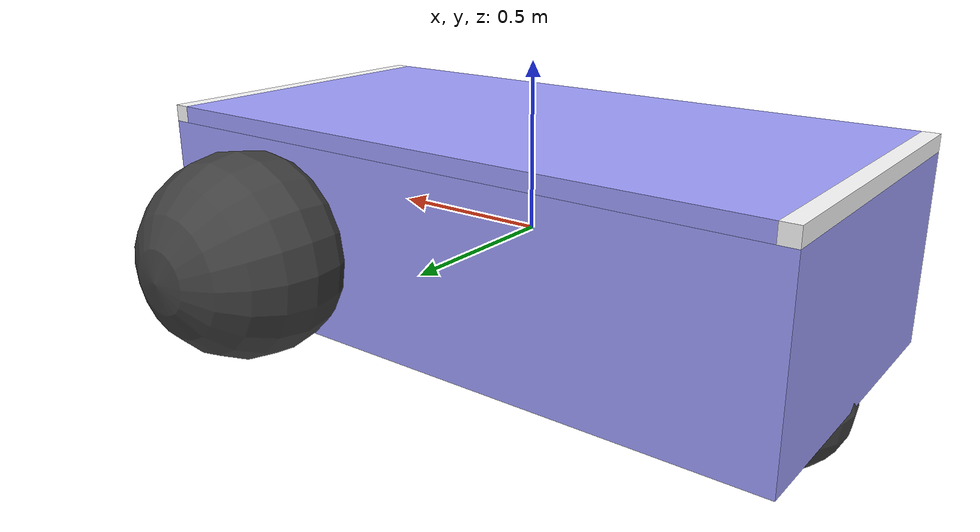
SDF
<sdf version='1.11'>
  <model name='led_robot'>
    <link name='chassis_base'>
      <inertial>
        <pose>-0.90304061039203332 0 -0.1048572727908766 0 0 0</pose>
        <mass>2.1439499999999998</mass>
        <inertia>
          <ixx>0.41824963632547402</ixx>
          <ixy>0</ixy>
          <ixz>-0.51588503376478001</ixz>
          <iyy>2.0941187911243229</iyy>
          <iyz>0</iyz>
          <izz>1.9665281547988489</izz>
        </inertia>
      </inertial>
      <collision name='chassis_base_collision_collision'>
        <pose>0 0 0 0 0 0</pose>
        <geometry>
          <box>
            <size>2 1 0.56872599999999995</size>
          </box>
        </geometry>
        <surface>
          <contact>
            <ode/>
          </contact>
          <friction>
            <ode/>
          </friction>
        </surface>
      </collision>
      <collision name='chassis_base_fixed_joint_lump__caster_collision_collision_1'>
        <pose>-0.80571099999999996 0 -0.29999999999999999 0 0 0</pose>
        <geometry>
          <sphere>
            <radius>0.20000000000000001</radius>
          </sphere>
        </geometry>
      </collision>
      <visual name='chassis_base_visual_visual'>
        <pose>0 0 0 0 0 0</pose>
        <geometry>
          <box>
            <size>2 1 0.56872599999999995</size>
          </box>
        </geometry>
        <material>
          <diffuse>0.625 0.625 1 1</diffuse>
          <ambient>0.625 0.625 1 1</ambient>
        </material>
      </visual>
      <visual name='chassis_base_fixed_joint_lump__caster_visual_visual_1'>
        <pose>-0.80571099999999996 0 -0.29999999999999999 0 0 0</pose>
        <geometry>
          <sphere>
            <radius>0.20000000000000001</radius>
          </sphere>
        </geometry>
        <material>
          <diffuse>0.25 0.25 0.25 1</diffuse>
          <ambient>0.25 0.25 0.25 1</ambient>
        </material>
      </visual>
      <light name='point_light_down' type='point'>
        <pose>0 0 0.28436299999999998 0 0 0</pose>
        <diffuse>1 1 1 1</diffuse>
        <specular>0.100000001 0.100000001 0.100000001 1</specular>
        <attenuation>
          <range>1.5</range>
          <constant>0.80000000000000004</constant>
          <linear>0.5</linear>
          <quadratic>0.5</quadratic>
        </attenuation>
        <cast_shadows>true</cast_shadows>
        <direction>0 0 -1</direction>
        <spot>
          <inner_angle>0</inner_angle>
          <outer_angle>0</outer_angle>
          <falloff>0</falloff>
        </spot>
      </light>
    </link>
    <joint name='base_to_top_joint' type='fixed'>
      <pose relative_to='chassis_base'>0 0 0.309363 0 0 0</pose>
      <parent>chassis_base</parent>
      <child>chassis_top</child>
      <axis>
        <dynamics>
          <spring_reference>0</spring_reference>
          <spring_stiffness>0</spring_stiffness>
        </dynamics>
        <xyz>0 0 1</xyz>
        <limit>
          <lower>-inf</lower>
          <upper>inf</upper>
        </limit>
      </axis>
      <physics>
        <ode>
          <limit>
            <cfm>0</cfm>
            <erp>0.20000000000000001</erp>
          </limit>
        </ode>
      </physics>
    </joint>
    <link name='chassis_top'>
      <pose relative_to='base_to_top_joint'>0 0 0 0 0 0</pose>
      <inertial>
        <pose>-0.15142700000000001 0 0.48436299999999999 0 0 0</pose>
        <mass>1.14395</mass>
        <inertia>
          <ixx>0.126164</ixx>
          <ixy>0</ixy>
          <ixz>0</ixz>
          <iyy>0.41651899999999997</iyy>
          <iyz>0</iyz>
          <izz>0.481014</izz>
        </inertia>
      </inertial>
      <collision name='chassis_top_collision_collision'>
        <pose>0 0 0 0 0 0</pose>
        <geometry>
          <box>
            <size>1.8999999999999999 1 0.050000000000000003</size>
          </box>
        </geometry>
      </collision>
      <visual name='chassis_top_visual_visual'>
        <pose>0 0 0 0 0 0</pose>
        <geometry>
          <box>
            <size>1.8999999999999999 1 0.050000000000000003</size>
          </box>
        </geometry>
        <material>
          <diffuse>0.625 0.625 1 1</diffuse>
          <ambient>0.625 0.625 1 1</ambient>
        </material>
      </visual>
    </link>
    <joint name='top_to_back_led_joint' type='fixed'>
      <pose relative_to='chassis_top'>0.97499999999999998 0 0 0 0 0</pose>
      <parent>chassis_top</parent>
      <child>back_led</child>
      <axis>
        <dynamics>
          <spring_reference>0</spring_reference>
          <spring_stiffness>0</spring_stiffness>
        </dynamics>
        <xyz>0 0 1</xyz>
        <limit>
          <lower>-inf</lower>
          <upper>inf</upper>
        </limit>
      </axis>
      <physics>
        <ode>
          <limit>
            <cfm>0</cfm>
            <erp>0.20000000000000001</erp>
          </limit>
        </ode>
      </physics>
    </joint>
    <link name='back_led'>
      <pose relative_to='top_to_back_led_joint'>0 0 0 0 0 0</pose>
      <inertial>
        <pose>0.823573 0 0.48436299999999999 0 0 0</pose>
        <mass>0.01</mass>
        <inertia>
          <ixx>9.9999999999999995e-07</ixx>
          <ixy>0</ixy>
          <ixz>0</ixz>
          <iyy>9.9999999999999995e-07</iyy>
          <iyz>0</iyz>
          <izz>9.9999999999999995e-07</izz>
        </inertia>
      </inertial>
      <collision name='back_led_collision_collision'>
        <pose>0 0 0 0 0 0</pose>
        <geometry>
          <box>
            <size>0.050000000000000003 1 0.050000000000000003</size>
          </box>
        </geometry>
      </collision>
      <visual name='back_led_visual_visual'>
        <pose>0 0 0 0 0 0</pose>
        <geometry>
          <box>
            <size>0.050000000000000003 1 0.050000000000000003</size>
          </box>
        </geometry>
        <material>
          <diffuse>1 1 1 1</diffuse>
          <ambient>1 1 1 1</ambient>
        </material>
      </visual>
    </link>
    <joint name='top_to_front_led_joint' type='fixed'>
      <pose relative_to='chassis_top'>-0.97499999999999998 0 0 0 0 0</pose>
      <parent>chassis_top</parent>
      <child>front_led</child>
      <axis>
        <dynamics>
          <spring_reference>0</spring_reference>
          <spring_stiffness>0</spring_stiffness>
        </dynamics>
        <xyz>0 0 1</xyz>
        <limit>
          <lower>-inf</lower>
          <upper>inf</upper>
        </limit>
      </axis>
      <physics>
        <ode>
          <limit>
            <cfm>0</cfm>
            <erp>0.20000000000000001</erp>
          </limit>
        </ode>
      </physics>
    </joint>
    <link name='front_led'>
      <pose relative_to='top_to_front_led_joint'>0 0 0 0 0 0</pose>
      <inertial>
        <pose>-1.1264270000000001 0 0.48436299999999999 0 0 0</pose>
        <mass>0.01</mass>
        <inertia>
          <ixx>9.9999999999999995e-07</ixx>
          <ixy>0</ixy>
          <ixz>0</ixz>
          <iyy>9.9999999999999995e-07</iyy>
          <iyz>0</iyz>
          <izz>9.9999999999999995e-07</izz>
        </inertia>
      </inertial>
      <collision name='front_led_collision_collision'>
        <pose>0 0 0 0 0 0</pose>
        <geometry>
          <box>
            <size>0.050000000000000003 1 0.050000000000000003</size>
          </box>
        </geometry>
      </collision>
      <visual name='front_led_visual_visual'>
        <pose>0 0 0 0 0 0</pose>
        <geometry>
          <box>
            <size>0.050000000000000003 1 0.050000000000000003</size>
          </box>
        </geometry>
        <material>
          <diffuse>1 1 1 1</diffuse>
          <ambient>1 1 1 1</ambient>
        </material>
      </visual>
    </link>
    <joint name='left_wheel_joint' type='revolute'>
      <pose relative_to='chassis_base'>0.55428299999999997 0.62502899999999995 -0.025000000000000001 -1.5707 0 0</pose>
      <parent>chassis_base</parent>
      <child>left_wheel</child>
      <axis>
        <xyz>0 0 1</xyz>
        <limit>
          <lower>-inf</lower>
          <upper>inf</upper>
        </limit>
        <dynamics>
          <spring_reference>0</spring_reference>
          <spring_stiffness>0</spring_stiffness>
        </dynamics>
      </axis>
    </joint>
    <link name='left_wheel'>
      <pose relative_to='left_wheel_joint'>0 0 0 0 0 0</pose>
      <inertial>
        <pose>0.55428299999999997 0.62502899999999995 -0.025000000000000001 -1.5707 0 0</pose>
        <mass>2</mass>
        <inertia>
          <ixx>0.14583299999999999</ixx>
          <ixy>0</ixy>
          <ixz>0</ixz>
          <iyy>0.14583299999999999</iyy>
          <iyz>0</iyz>
          <izz>0.125</izz>
        </inertia>
      </inertial>
      <collision name='left_wheel_collision_collision'>
        <pose>0 0 0 0 0 0</pose>
        <geometry>
          <sphere>
            <radius>0.29999999999999999</radius>
          </sphere>
        </geometry>
      </collision>
      <visual name='left_wheel_visual_visual'>
        <pose>0 0 0 0 0 0</pose>
        <geometry>
          <sphere>
            <radius>0.29999999999999999</radius>
          </sphere>
        </geometry>
        <material>
          <diffuse>0.25 0.25 0.25 1</diffuse>
          <ambient>0.25 0.25 0.25 1</ambient>
        </material>
      </visual>
    </link>
    <joint name='right_wheel_joint' type='revolute'>
      <pose relative_to='chassis_base'>0.55428200000000005 -0.62502899999999995 -0.025000000000000001 -1.5707 0 0</pose>
      <parent>chassis_base</parent>
      <child>right_wheel</child>
      <axis>
        <xyz>0 0 1</xyz>
        <limit>
          <lower>-inf</lower>
          <upper>inf</upper>
        </limit>
        <dynamics>
          <spring_reference>0</spring_reference>
          <spring_stiffness>0</spring_stiffness>
        </dynamics>
      </axis>
    </joint>
    <link name='right_wheel'>
      <pose relative_to='right_wheel_joint'>0 0 0 0 0 0</pose>
      <inertial>
        <pose>0.55428200000000005 -0.62502899999999995 -0.025000000000000001 -1.5707 0 0</pose>
        <mass>2</mass>
        <inertia>
          <ixx>0.14583299999999999</ixx>
          <ixy>0</ixy>
          <ixz>0</ixz>
          <iyy>0.14583299999999999</iyy>
          <iyz>0</iyz>
          <izz>0.125</izz>
        </inertia>
      </inertial>
      <collision name='right_wheel_collision_collision'>
        <pose>0 0 0 0 0 0</pose>
        <geometry>
          <sphere>
            <radius>0.29999999999999999</radius>
          </sphere>
        </geometry>
      </collision>
      <visual name='right_wheel_visual_visual'>
        <pose>0 0 0 0 0 0</pose>
        <geometry>
          <sphere>
            <radius>0.29999999999999999</radius>
          </sphere>
        </geometry>
        <material>
          <diffuse>0.25 0.25 0.25 1</diffuse>
          <ambient>0.25 0.25 0.25 1</ambient>
        </material>
      </visual>
    </link>
    <plugin name='gz::sim::systems::DiffDrive' filename='gz-sim-diff-drive-system'>
      <left_joint>left_wheel_joint</left_joint>
      <right_joint>right_wheel_joint</right_joint>
      <wheel_separation>1.25</wheel_separation>
      <wheel_radius>0.3</wheel_radius>
      <odom_publish_frequency>1</odom_publish_frequency>
      <max_linear_acceleration>1</max_linear_acceleration>
      <min_linear_acceleration>-1</min_linear_acceleration>
      <max_angular_acceleration>2</max_angular_acceleration>
      <min_angular_acceleration>-2</min_angular_acceleration>
      <max_linear_velocity>0.5</max_linear_velocity>
      <min_linear_velocity>-0.5</min_linear_velocity>
      <max_angular_velocity>1</max_angular_velocity>
      <min_angular_velocity>-1</min_angular_velocity>
    </plugin>
    <plugin name='gz::sim::systems::LedPlugin' filename='libgz_led_plugin.so'>
      <led_group_name>led_robot</led_group_name>
      <led name='back_led'>
        <visual_name>back_led::back_led_visual</visual_name>
      </led>
      <led name='front_led'>
        <visual_name>front_led::front_led_visual</visual_name>
      </led>
      <led name='bottom_led'>
        <light_name>chassis_base::point_light_down</light_name>
      </led>
      <startup_mode>idle</startup_mode>
      <mode name='idle'>
        <step always_on='false'>
          <color>0 1 1 1</color>
          <on_time>1.0</on_time>
          <intensity>2.0</intensity>
        </step>
        <step always_on='false'>
          <color>1 1 1 1</color>
          <on_time>1.0</on_time>
          <intensity>0.0</intensity>
        </step>
      </mode>
      <mode name='emergency'>
        <step always_on='false'>
          <color>1 0 0 1</color>
          <on_time>1.0</on_time>
          <intensity>2.0</intensity>
        </step>
        <step always_on='false'>
          <color>1 1 1 1</color>
          <on_time>1.0</on_time>
          <intensity>0.0</intensity>
        </step>
      </mode>
      <mode name='front_navigation'>
        <active_leds>
          <led>front_led</led>
        </active_leds>
        <step always_on='true'>
          <color>0 1 1 1</color>
        </step>
      </mode>
      <mode name='reverse_navigation'>
        <active_leds>
          <led>back_led</led>
        </active_leds>
        <step always_on='true'>
          <color>0 1 1 1</color>
        </step>
      </mode>
    </plugin>
    <frame name='caster_wheel_joint' attached_to='chassis_base'>
      <pose>-0.80571099999999996 0 -0.29999999999999999 0 0 0</pose>
    </frame>
    <frame name='caster' attached_to='caster_wheel_joint'>
      <pose>0 0 0 0 0 0</pose>
    </frame>
  </model>
</sdf>
